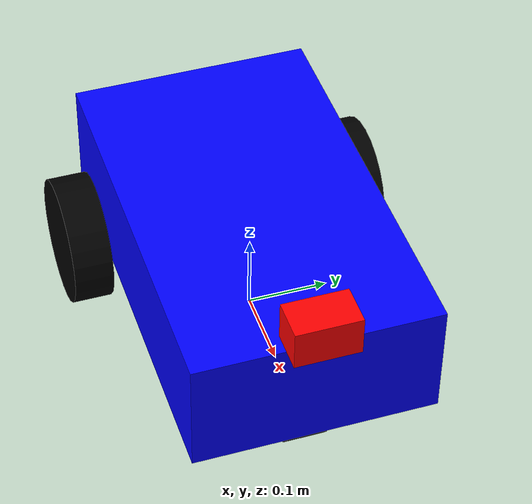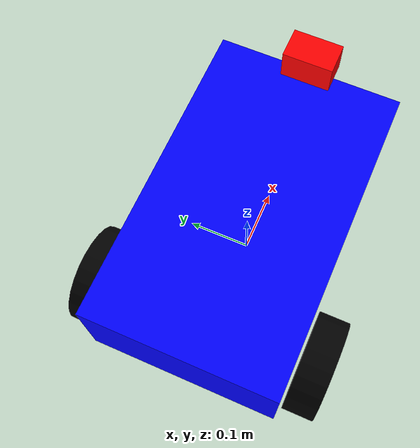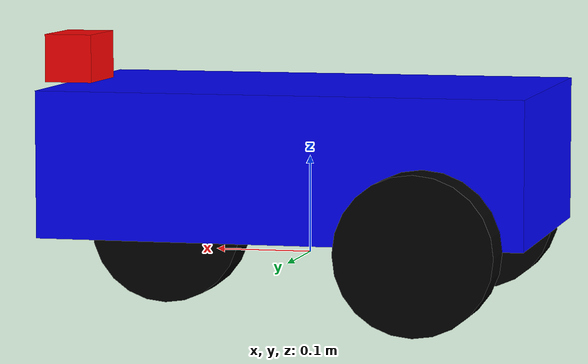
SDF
<?xml version="1.0"?>
<sdf version="1.8">
  <model name="tricycle_robot">

    <!-- Base Link -->
    <link name="base_link">
      <pose>0 0 0.1 0 0 0</pose>
      <inertial>
        <mass>2.0</mass>
        <inertia>
          <ixx>0.0229</ixx>
          <iyy>0.0458</iyy>
          <izz>0.0583</izz>
        </inertia>
      </inertial>

      <visual name="visual">
        <geometry>
          <box>
            <size>0.5 0.3 0.15</size>
          </box>
        </geometry>
        <material>
          <ambient>0 0 1 1</ambient>
          <diffuse>0 0 1 1</diffuse>
        </material>
      </visual>

      <collision name="collision">
        <geometry>
          <box>
            <size>0.5 0.3 0.15</size>
          </box>
        </geometry>
      </collision>
    </link>

    <!-- Rear Left Wheel -->
    <link name="rear_left_wheel">
      <pose>-0.15 0.18 0.025 -1.57 0 0</pose>
      <inertial>
        <mass>0.5</mass>
        <inertia>
          <ixx>0.001</ixx>
          <iyy>0.001</iyy>
          <izz>0.0016</izz>
        </inertia>
      </inertial>

      <visual name="visual">
        <geometry>
          <cylinder>
            <radius>0.08</radius>
            <length>0.05</length>
          </cylinder>
        </geometry>
        <material>
          <ambient>0 0 0 1</ambient>
          <diffuse>0 0 0 1</diffuse>
        </material>
      </visual>

      <collision name="collision">
        <geometry>
          <cylinder>
            <radius>0.08</radius>
            <length>0.05</length>
          </cylinder>
        </geometry>
        <surface>
          <friction>
            <ode>
              <mu>1.0</mu>
              <mu2>1.0</mu2>
            </ode>
          </friction>
        </surface>
      </collision>
    </link>

    <joint name="rear_left_wheel_joint" type="revolute">
      <parent>base_link</parent>
      <child>rear_left_wheel</child>
      <axis>
        <xyz>0 0 1</xyz>
        <limit>
          <lower>-1e16</lower>
          <upper>1e16</upper>
        </limit>
      </axis>
    </joint>

    <!-- Rear Right Wheel -->
    <link name="rear_right_wheel">
      <pose>-0.15 -0.18 0.025 1.57 0 0</pose>
      <inertial>
        <mass>0.5</mass>
        <inertia>
          <ixx>0.001</ixx>
          <iyy>0.001</iyy>
          <izz>0.0016</izz>
        </inertia>
      </inertial>

      <visual name="visual">
        <geometry>
          <cylinder>
            <radius>0.08</radius>
            <length>0.05</length>
          </cylinder>
        </geometry>
        <material>
          <ambient>0 0 0 1</ambient>
          <diffuse>0 0 0 1</diffuse>
        </material>
      </visual>

      <collision name="collision">
        <geometry>
          <cylinder>
            <radius>0.08</radius>
            <length>0.05</length>
          </cylinder>
        </geometry>
        <surface>
          <friction>
            <ode>
              <mu>1.0</mu>
              <mu2>1.0</mu2>
            </ode>
          </friction>
        </surface>
      </collision>
    </link>

    <joint name="rear_right_wheel_joint" type="revolute">
      <parent>base_link</parent>
      <child>rear_right_wheel</child>
      <axis>
        <xyz>0 0 -1</xyz>
        <limit>
          <lower>-1e16</lower>
          <upper>1e16</upper>
        </limit>
      </axis>
    </joint>

    <!-- Front Wheel -->
    <link name="front_wheel">
      <pose>0.15 0 0.025 -1.57 0 0</pose>
      <inertial>
        <mass>0.5</mass>
        <inertia>
          <ixx>0.001</ixx>
          <iyy>0.001</iyy>
          <izz>0.0016</izz>
        </inertia>
      </inertial>

      <visual name="visual">
        <geometry>
          <cylinder>
            <radius>0.08</radius>
            <length>0.05</length>
          </cylinder>
        </geometry>
        <material>
          <ambient>0 0 0 1</ambient>
          <diffuse>0 0 0 1</diffuse>
        </material>
      </visual>

      <collision name="collision">
        <geometry>
          <cylinder>
            <radius>0.08</radius>
            <length>0.05</length>
          </cylinder>
        </geometry>
        <surface>
          <friction>
            <ode>
              <mu>0.5</mu>
              <mu2>0.5</mu2>
            </ode>
          </friction>
        </surface>
      </collision>
    </link>

    <joint name="front_wheel_joint" type="revolute">
      <parent>base_link</parent>
      <child>front_wheel</child>
      <axis>
        <xyz>0 0 1</xyz>
        <limit>
          <lower>-1e16</lower>
          <upper>1e16</upper>
        </limit>
      </axis>
    </joint>

    <!-- Camera Link -->
    <link name="camera_link">
      <pose>0.25 0 0.2 0 0 0</pose>
      <inertial>
        <mass>0.1</mass>
        <inertia>
          <ixx>0.0001</ixx>
          <iyy>0.0001</iyy>
          <izz>0.0001</izz>
        </inertia>
      </inertial>

      <visual name="visual">
        <geometry>
          <box>
            <size>0.05 0.08 0.05</size>
          </box>
        </geometry>
        <material>
          <ambient>1 0 0 1</ambient>
          <diffuse>1 0 0 1</diffuse>
        </material>
      </visual>

      <collision name="collision">
        <geometry>
          <box>
            <size>0.05 0.08 0.05</size>
          </box>
        </geometry>
      </collision>

      <sensor name="camera" type="camera">
        <always_on>1</always_on>
        <update_rate>30</update_rate>
        <visualize>true</visualize>
        <topic>/camera/image</topic>

        <camera>
          <horizontal_fov>1.047</horizontal_fov>
          <image>
            <width>640</width>
            <height>480</height>
            <format>R8G8B8</format>
          </image>
          <clip>
            <near>0.05</near>
            <far>0.5</far>
          </clip>
        </camera>
      </sensor>
    </link>

    <joint name="camera_joint" type="fixed">
      <parent>base_link</parent>
      <child>camera_link</child>
    </joint>

    <!-- Differential Drive Plugin for ROS2 Humble -->
    <plugin filename="libgz-sim-diff-drive-system.so" name="gz::sim::systems::DiffDrive">
      <left_joint>rear_left_wheel_joint</left_joint>
      <right_joint>rear_right_wheel_joint</right_joint>
      <wheel_separation>0.36</wheel_separation>
      <wheel_radius>0.08</wheel_radius>
      <odom_publish_frequency>50</odom_publish_frequency>
      <topic>cmd_vel</topic>
      <odom_topic>odometry</odom_topic>
      <frame_id>odom</frame_id>
      <child_frame_id>base_link</child_frame_id>
    </plugin>

    <!-- Sensors System Plugin (Required for camera to work) -->
    <plugin filename="libgz-sim-sensors-system.so" name="gz::sim::systems::Sensors">
      <render_engine>ogre2</render_engine>
    </plugin>

  </model>
</sdf>
